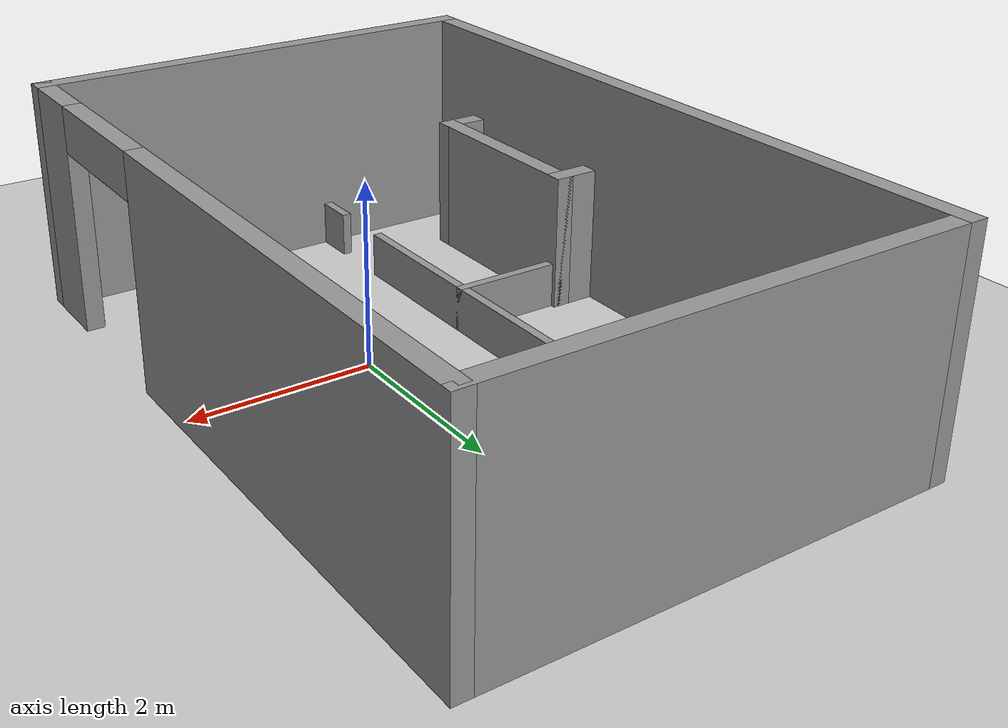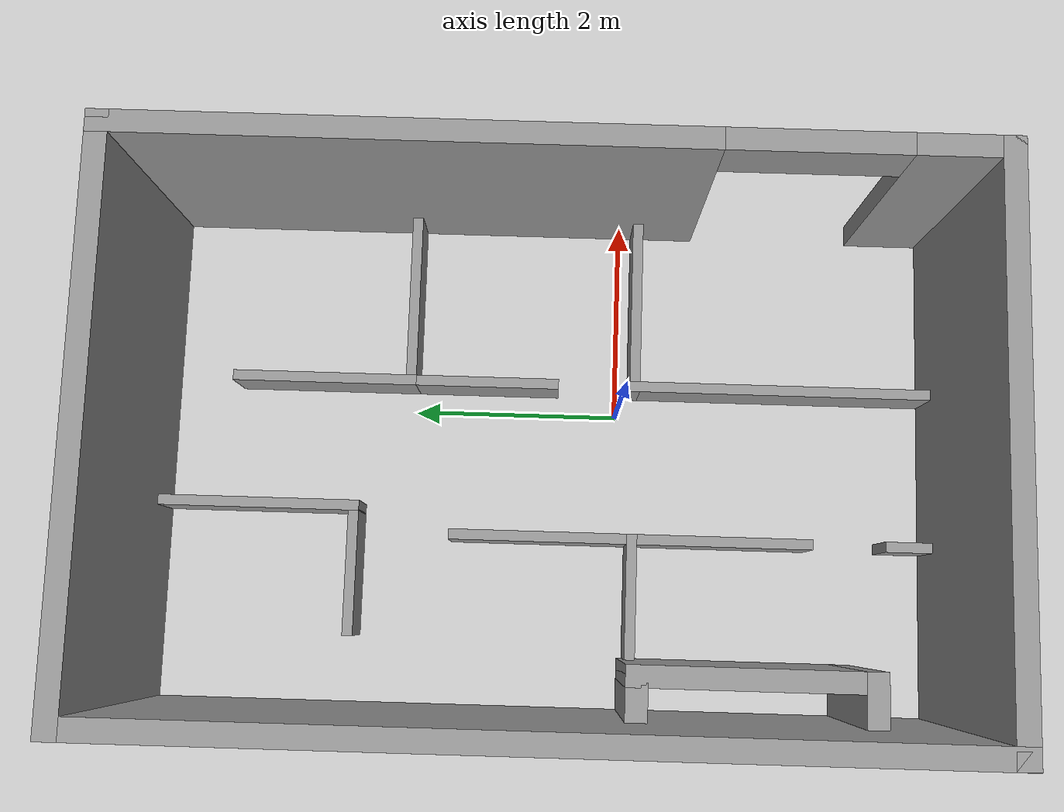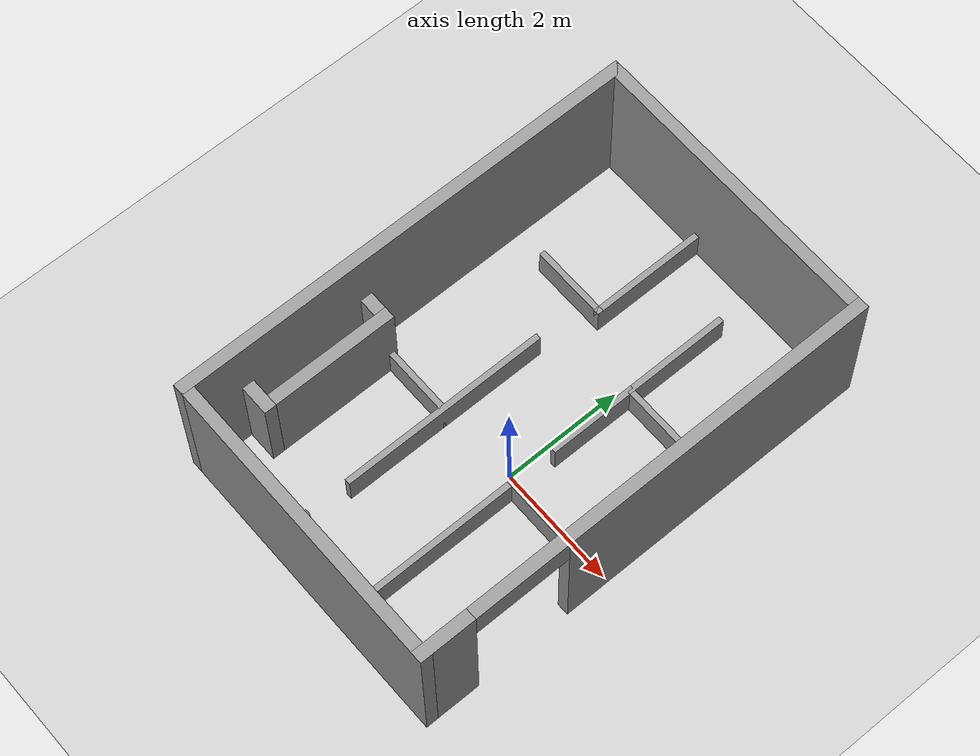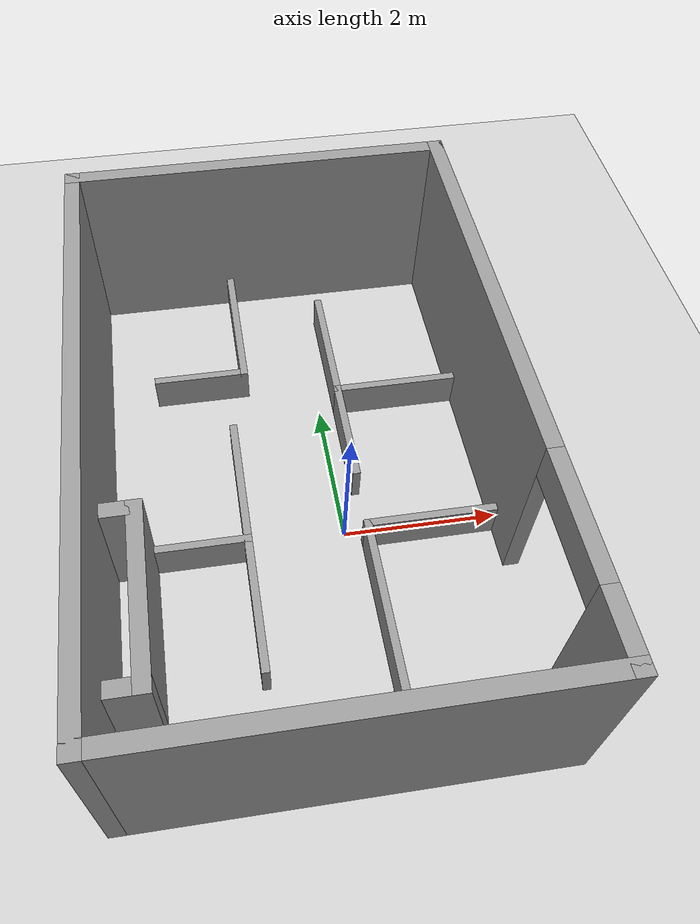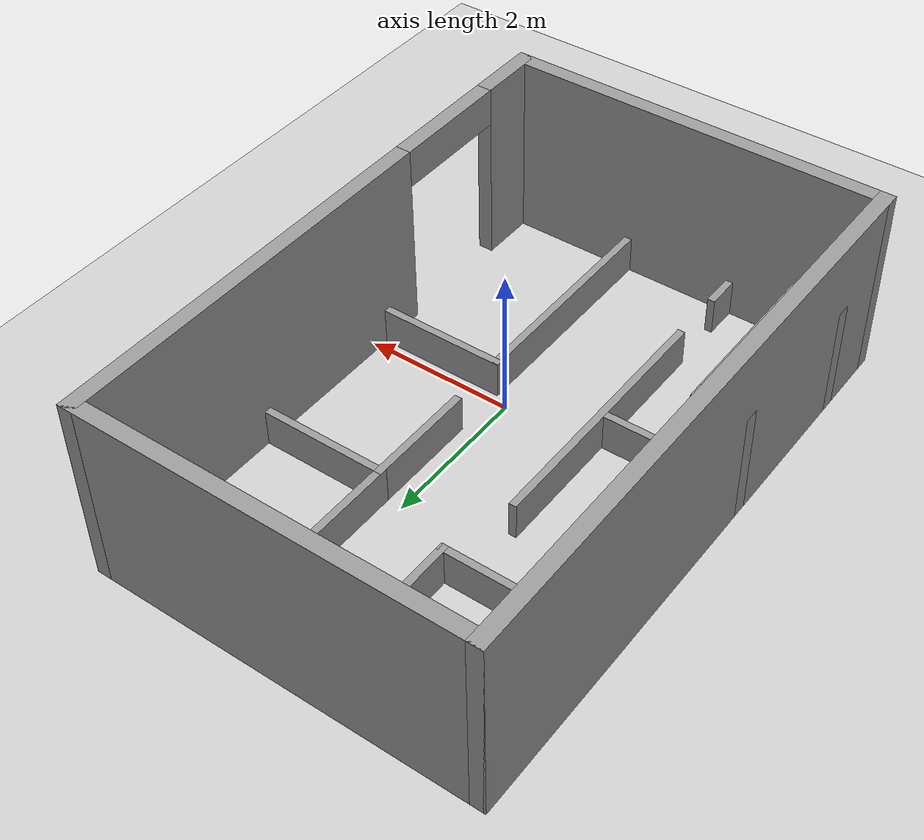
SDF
<sdf version="1.4">
 <world name="default">
  <light name="sun" type="directional">
   <pose>0 0 10 0 -0 0</pose>
   <diffuse>0.8 0.8 0.8 1</diffuse>
   <specular>0.2 0.2 0.2 1</specular>
   <attenuation>
    <range>1000</range>
    <constant>0.9</constant>
    <linear>0.01</linear>
    <quadratic>0.001</quadratic>
   </attenuation>
   <direction>-0.5 0.1 -0.9</direction>
  </light>
  <model name="ground_plane">
   <static>1</static>
   <link name="link">
    <collision name="collision">
     <geometry><plane><normal>0 0 1</normal><size>100 100</size></plane></geometry>
     <surface><friction><ode><mu>100</mu><mu2>50</mu2></ode></friction></surface>
    </collision>
    <visual name="visual">
     <cast_shadows>0</cast_shadows>
     <geometry><plane><normal>0 0 1</normal><size>100 100</size></plane></geometry>
     <material>
      <script><uri>file://media/materials/scripts/gazebo.material</uri><name>Gazebo/Grey</name></script>
     </material>
    </visual>
    <velocity_decay><linear>0</linear><angular>0</angular></velocity_decay>
   </link>
  </model>
  <physics type="ode">
   <max_step_size>0.001</max_step_size>
   <real_time_factor>1</real_time_factor>
   <real_time_update_rate>1000</real_time_update_rate>
   <gravity>0 0 -9.8</gravity>
  </physics>
  <scene><ambient>0.4 0.4 0.4 1</ambient><background>0.7 0.7 0.7 1</background><shadows>1</shadows></scene>
  <model name="SpringDemo">
   <link name="Wall_10">
    <collision name="Wall_10_Collision">
     <geometry><box><size>5.2 0.2 2.5</size></box></geometry>
     <pose>0 0 1.25 0 -0 0</pose>
    </collision>
    <visual name="Wall_10_Visual">
     <pose>0 0 1.25 0 -0 0</pose>
     <geometry><box><size>5.2 0.2 2.5</size></box></geometry>
     <material>
      <script><uri>file://media/materials/scripts/gazebo.material</uri><name>Gazebo/Grey</name></script>
     </material>
    </visual>
    <velocity_decay><linear>0</linear><angular>0</angular></velocity_decay>
    <pose>2.5 0 0 0 -0 0</pose>
   </link>
   <link name="Wall_11">
    <pose>5 -3.85 0 0 0 -1.5708</pose>
    <visual name="Wall_11_Visual_0">
     <pose>-1.26286 0 1.25 0 -0 0</pose>
     <geometry><box><size>5.37429 0.2 2.5</size></box></geometry>
     <material>
      <script><uri>file://media/materials/scripts/gazebo.material</uri><name>Gazebo/Grey</name></script>
     </material>
    </visual>
    <collision name="Wall_11_Collision_0">
     <geometry><box><size>5.37429 0.2 2.5</size></box></geometry>
     <pose>-1.26286 0 1.25 0 -0 0</pose>
    </collision>
    <visual name="Wall_11_Visual_1">
     <pose>3.48714 0 1.25 0 -0 0</pose>
     <geometry><box><size>0.925709 0.2 2.5</size></box></geometry>
     <material>
      <script><uri>file://media/materials/scripts/gazebo.material</uri><name>Gazebo/Grey</name></script>
     </material>
    </visual>
    <collision name="Wall_11_Collision_1">
     <geometry><box><size>0.925709 0.2 2.5</size></box></geometry>
     <pose>3.48714 0 1.25 0 -0 0</pose>
    </collision>
    <visual name="Wall_11_Visual_2">
     <pose>2.22429 0 2.25 0 -0 0</pose>
     <geometry><box><size>1.6 0.2 0.5</size></box></geometry>
     <material>
      <script><uri>file://media/materials/scripts/gazebo.material</uri><name>Gazebo/Grey</name></script>
     </material>
    </visual>
    <collision name="Wall_11_Collision_2">
     <geometry><box><size>1.6 0.2 0.5</size></box></geometry>
     <pose>2.22429 0 2.25 0 -0 0</pose>
    </collision>
    <velocity_decay><linear>0</linear><angular>0</angular></velocity_decay>
   </link>
   <link name="Wall_12">
    <collision name="Wall_12_Collision">
     <geometry><box><size>5.2 0.2 2.5</size></box></geometry>
     <pose>0 0 1.25 0 -0 0</pose>
    </collision>
    <visual name="Wall_12_Visual">
     <pose>0 0 1.25 0 -0 0</pose>
     <geometry><box><size>5.2 0.2 2.5</size></box></geometry>
     <material>
      <script><uri>file://media/materials/scripts/gazebo.material</uri><name>Gazebo/Grey</name></script>
     </material>
    </visual>
    <velocity_decay><linear>0</linear><angular>0</angular></velocity_decay>
    <pose>2.5 -7.7 0 0 -0 3.14159</pose>
   </link>
   <link name="Wall_13">
    <collision name="Wall_13_Collision">
     <geometry><box><size>7.9 0.2 2.5</size></box></geometry>
     <pose>0 0 1.25 0 -0 0</pose>
    </collision>
    <visual name="Wall_13_Visual">
     <pose>0 0 1.25 0 -0 0</pose>
     <geometry><box><size>7.9 0.2 2.5</size></box></geometry>
     <material>
      <script><uri>file://media/materials/scripts/gazebo.material</uri><name>Gazebo/Grey</name></script>
     </material>
    </visual>
    <velocity_decay><linear>0</linear><angular>0</angular></velocity_decay>
    <pose>0 -3.85 0 0 -0 1.5708</pose>
   </link>
   <link name="Wall_15">
    <collision name="Wall_15_Collision">
     <geometry><box><size>1.85 0.1 0.5</size></box></geometry>
     <pose>0 0 0.25 0 -0 0</pose>
    </collision>
    <visual name="Wall_15_Visual">
     <pose>0 0 0.25 0 -0 0</pose>
     <geometry><box><size>1.85 0.1 0.5</size></box></geometry>
     <material>
      <script><uri>file://media/materials/scripts/gazebo.material</uri><name>Gazebo/Grey</name></script>
     </material>
    </visual>
    <velocity_decay><linear>0</linear><angular>0</angular></velocity_decay>
    <pose>4.125 -4.7 0 0 -0 3.14159</pose>
   </link>
   <link name="Wall_16">
    <collision name="Wall_16_Collision">
     <geometry><box><size>3.1 0.1 0.5</size></box></geometry>
     <pose>0 0 0.25 0 -0 0</pose>
    </collision>
    <visual name="Wall_16_Visual">
     <pose>0 0 0.25 0 -0 0</pose>
     <geometry><box><size>3.1 0.1 0.5</size></box></geometry>
     <material>
      <script><uri>file://media/materials/scripts/gazebo.material</uri><name>Gazebo/Grey</name></script>
     </material>
    </visual>
    <velocity_decay><linear>0</linear><angular>0</angular></velocity_decay>
    <pose>3.25 -6.2 0 0 0 -1.5708</pose>
   </link>
   <link name="Wall_18">
    <collision name="Wall_18_Collision">
     <geometry><box><size>0.7 0.2 1.5</size></box></geometry>
     <pose>0 0 0.75 0 -0 0</pose>
    </collision>
    <visual name="Wall_18_Visual">
     <pose>0 0 0.75 0 -0 0</pose>
     <geometry><box><size>0.7 0.2 1.5</size></box></geometry>
     <material>
      <script><uri>file://media/materials/scripts/gazebo.material</uri><name>Gazebo/Grey</name></script>
     </material>
    </visual>
    <velocity_decay><linear>0</linear><angular>0</angular></velocity_decay>
    <pose>0.25 -4.7 0 0 -0 0</pose>
   </link>
   <link name="Wall_19">
    <collision name="Wall_19_Collision">
     <geometry><box><size>2.3 0.2 1.5</size></box></geometry>
     <pose>0 0 0.75 0 -0 0</pose>
    </collision>
    <visual name="Wall_19_Visual">
     <pose>0 0 0.75 0 -0 0</pose>
     <geometry><box><size>2.3 0.2 1.5</size></box></geometry>
     <material>
      <script><uri>file://media/materials/scripts/gazebo.material</uri><name>Gazebo/Grey</name></script>
     </material>
    </visual>
    <velocity_decay><linear>0</linear><angular>0</angular></velocity_decay>
    <pose>0.5 -5.75 0 0 0 -1.5708</pose>
   </link>
   <link name="Wall_20">
    <collision name="Wall_20_Collision">
     <geometry><box><size>0.7 0.2 1.5</size></box></geometry>
     <pose>0 0 0.75 0 -0 0</pose>
    </collision>
    <visual name="Wall_20_Visual">
     <pose>0 0 0.75 0 -0 0</pose>
     <geometry><box><size>0.7 0.2 1.5</size></box></geometry>
     <material>
      <script><uri>file://media/materials/scripts/gazebo.material</uri><name>Gazebo/Grey</name></script>
     </material>
    </visual>
    <velocity_decay><linear>0</linear><angular>0</angular></velocity_decay>
    <pose>0.25 -6.8 0 0 -0 3.14159</pose>
   </link>
   <link name="Wall_22">
    <collision name="Wall_22_Collision">
     <geometry><box><size>1.85 0.1 0.5</size></box></geometry>
     <pose>0 0 0.25 0 -0 0</pose>
    </collision>
    <visual name="Wall_22_Visual">
     <pose>0 0 0.25 0 -0 0</pose>
     <geometry><box><size>1.85 0.1 0.5</size></box></geometry>
     <material>
      <script><uri>file://media/materials/scripts/gazebo.material</uri><name>Gazebo/Grey</name></script>
     </material>
    </visual>
    <velocity_decay><linear>0</linear><angular>0</angular></velocity_decay>
    <pose>4.125 -2.5 0 0 -0 3.14159</pose>
   </link>
   <link name="Wall_23">
    <collision name="Wall_23_Collision">
     <geometry><box><size>1.5 0.1 0.5</size></box></geometry>
     <pose>0 0 0.25 0 -0 0</pose>
    </collision>
    <visual name="Wall_23_Visual">
     <pose>0 0 0.25 0 -0 0</pose>
     <geometry><box><size>1.5 0.1 0.5</size></box></geometry>
     <material>
      <script><uri>file://media/materials/scripts/gazebo.material</uri><name>Gazebo/Grey</name></script>
     </material>
    </visual>
    <velocity_decay><linear>0</linear><angular>0</angular></velocity_decay>
    <pose>3.25 -3.2 0 0 0 -1.5708</pose>
   </link>
   <link name="Wall_27">
    <collision name="Wall_27_Collision">
     <geometry><box><size>3.523 0.1 0.5</size></box></geometry>
     <pose>0 0 0.25 0 -0 0</pose>
    </collision>
    <visual name="Wall_27_Visual">
     <pose>0 0 0.25 0 -0 0</pose>
     <geometry><box><size>3.523 0.1 0.5</size></box></geometry>
     <material>
      <script><uri>file://media/materials/scripts/gazebo.material</uri><name>Gazebo/Grey</name></script>
     </material>
    </visual>
    <velocity_decay><linear>0</linear><angular>0</angular></velocity_decay>
    <pose>1.75 -4.6885 0 0 0 -1.5708</pose>
   </link>
   <link name="Wall_29">
    <collision name="Wall_29_Collision">
     <geometry><box><size>1.35 0.1 0.5</size></box></geometry>
     <pose>0 0 0.25 0 -0 0</pose>
    </collision>
    <visual name="Wall_29_Visual">
     <pose>0 0 0.25 0 -0 0</pose>
     <geometry><box><size>1.35 0.1 0.5</size></box></geometry>
     <material>
      <script><uri>file://media/materials/scripts/gazebo.material</uri><name>Gazebo/Grey</name></script>
     </material>
    </visual>
    <velocity_decay><linear>0</linear><angular>0</angular></velocity_decay>
    <pose>1.125 -4.7 0 0 -0 0</pose>
   </link>
   <link name="Wall_37">
    <collision name="Wall_37_Collision">
     <geometry><box><size>1.8 0.1 0.5</size></box></geometry>
     <pose>0 0 0.25 0 -0 0</pose>
    </collision>
    <visual name="Wall_37_Visual">
     <pose>0 0 0.25 0 -0 0</pose>
     <geometry><box><size>1.8 0.1 0.5</size></box></geometry>
     <material>
      <script><uri>file://media/materials/scripts/gazebo.material</uri><name>Gazebo/Grey</name></script>
     </material>
    </visual>
    <velocity_decay><linear>0</linear><angular>0</angular></velocity_decay>
    <pose>3.25 -1.65 0 0 0 -1.5708</pose>
   </link>
   <link name="Wall_43">
    <collision name="Wall_43_Collision">
     <geometry><box><size>0.6 0.1 0.5</size></box></geometry>
     <pose>0 0 0.25 0 -0 0</pose>
    </collision>
    <visual name="Wall_43_Visual">
     <pose>0 0 0.25 0 -0 0</pose>
     <geometry><box><size>0.6 0.1 0.5</size></box></geometry>
     <material>
      <script><uri>file://media/materials/scripts/gazebo.material</uri><name>Gazebo/Grey</name></script>
     </material>
    </visual>
    <velocity_decay><linear>0</linear><angular>0</angular></velocity_decay>
    <pose>1.75 -7.45 0 0 -0 1.5708</pose>
   </link>
   <link name="Wall_47">
    <collision name="Wall_47_Collision">
     <geometry><box><size>1.3 0.1 0.5</size></box></geometry>
     <pose>0 0 0.25 0 -0 0</pose>
    </collision>
    <visual name="Wall_47_Visual">
     <pose>0 0 0.25 0 -0 0</pose>
     <geometry><box><size>1.3 0.1 0.5</size></box></geometry>
     <material>
      <script><uri>file://media/materials/scripts/gazebo.material</uri><name>Gazebo/Grey</name></script>
     </material>
    </visual>
    <velocity_decay><linear>0</linear><angular>0</angular></velocity_decay>
    <pose>1.4 -2 0 0 -0 0</pose>
   </link>
   <link name="Wall_48">
    <collision name="Wall_48_Collision">
     <geometry><box><size>2.1 0.1 0.5</size></box></geometry>
     <pose>0 0 0.25 0 -0 0</pose>
    </collision>
    <visual name="Wall_48_Visual">
     <pose>0 0 0.25 0 -0 0</pose>
     <geometry><box><size>2.1 0.1 0.5</size></box></geometry>
     <material>
      <script><uri>file://media/materials/scripts/gazebo.material</uri><name>Gazebo/Grey</name></script>
     </material>
    </visual>
    <velocity_decay><linear>0</linear><angular>0</angular></velocity_decay>
    <pose>2 -1 0 0 -0 1.5708</pose>
   </link>
   <static>1</static>
   <pose>-3 4.53327 0 0 -0 0</pose>
  </model>
 </world>
</sdf>
